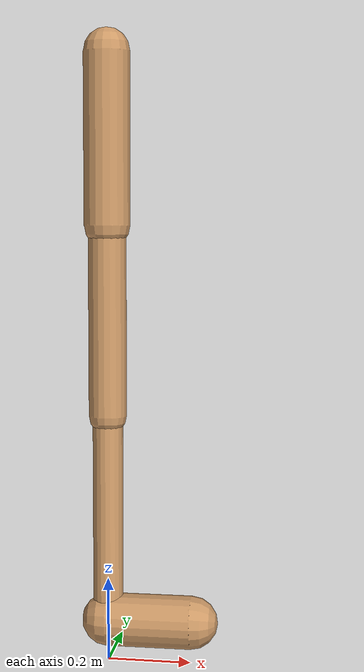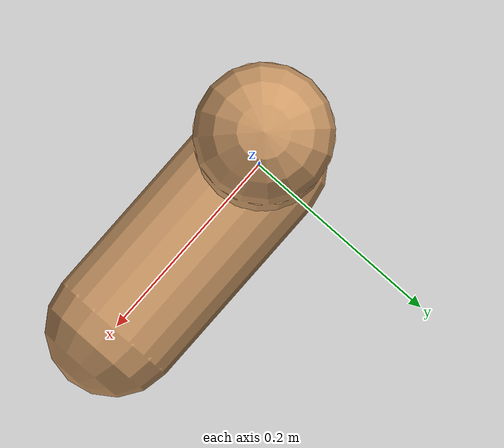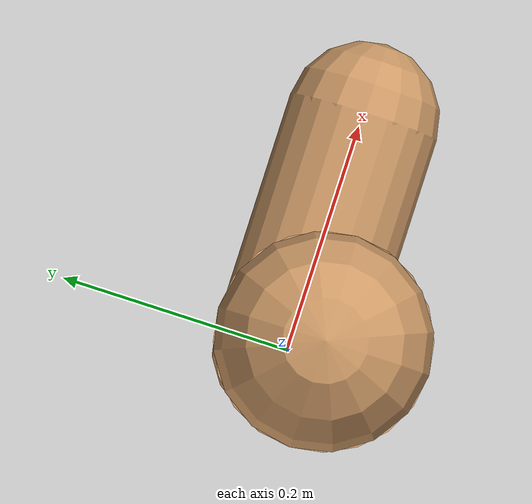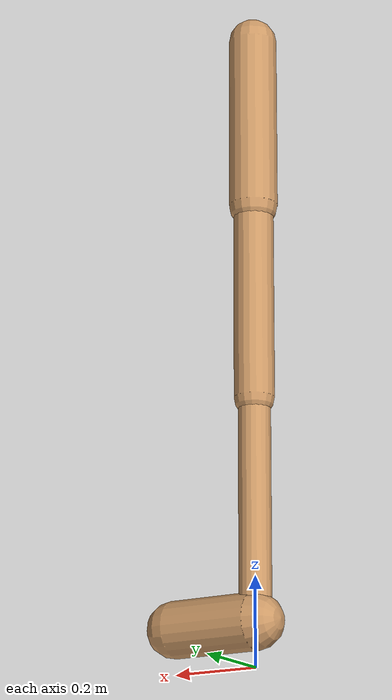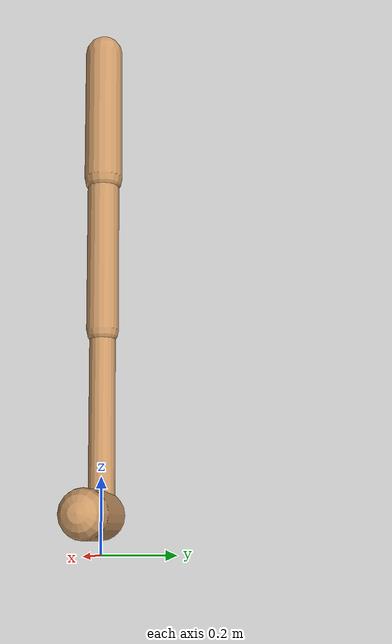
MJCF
<mujoco model="walker2d">
  <compiler angle="degree" coordinate="global" inertiafromgeom="true" />
  <default>
    <joint armature="0.01" damping=".1" limited="true" />
    <geom conaffinity="0" condim="3" contype="1" density="1000" friction="0.8 .1 .1" rgba="0.8 0.6 .4 1" />
  </default>
  <option integrator="RK4" timestep="0.002" />
  <worldbody>

    <body name="torso" pos="0 0 0.0026060160582863923">
      <joint armature="0" axis="1 0 0" damping="0" limited="false" name="ignorex" pos="0 0 0" stiffness="0" type="slide" />
      <joint armature="0" axis="0 0 1" damping="0" limited="false" name="ignorez" pos="0 0 0" ref="1.25" stiffness="0" type="slide" />
      <joint armature="0" axis="0 1 0" damping="0" limited="false" name="ignorey" pos="0 0 0" stiffness="0" type="hinge" />
      <geom fromto="0 0 1.45 0 0 1.05" name="torso_geom" size="0.05481199079702062" type="capsule" />
      <body name="thigh">
        <joint axis="0 -1 0" name="thigh_joint" pos="0 0 1.05" range="-150 0" type="hinge" />
        <geom fromto="0.0 0.0 1.05 0.0 0.0 0.5987655713408117" name="thigh_geom" size="0.04521200850434651" type="capsule" />
        <body name="leg" pos="0.0 0.0 -0.0012344286591883247">
          <joint axis="0 -1 0" name="leg_joint" pos="0 0 0.6" range="-150 0" type="hinge" />
          <geom fromto="0.0 0.0 0.6 0.0 0.0 0.09862841260090191" name="leg_geom" size="0.03616960680347721" type="capsule" />
          <body name="foot" pos="0.0 0.0 -0.0013715873990980954">
            <joint axis="0 -1 0" name="foot_joint" pos="0 0 0.1" range="-45 45" type="hinge" />
            <geom fromto="-0.0 0.0 0.1 0.202017242340091 0.0 0.1" name="foot_geom" size="0.06349067986300327" type="capsule" />
          </body>
        </body>
      </body>

      <body name="thigh_left">
        <joint axis="0 -1 0" name="thigh_left_joint" pos="0 0 1.05" range="-150 0" type="hinge" />
        <geom fromto="0.0 0.0 1.05 0.0 0.0 0.5987655713408117" name="thigh_left_geom" rgba=".7 .3 .6 1" size="0.04521200850434651" type="capsule" />
        <body name="leg_left" pos="0.0 0.0 -0.0012344286591883247">
          <joint axis="0 -1 0" name="leg_left_joint" pos="0 0 0.6" range="-150 0" type="hinge" />
          <geom fromto="0.0 0.0 0.6 0.0 0.0 0.09862841260090191" name="leg_left_geom" rgba=".7 .3 .6 1" size="0.03616960680347721" type="capsule" />
          <body name="foot_left" pos="0.0 0.0 -0.0013715873990980954">
            <joint axis="0 -1 0" name="foot_left_joint" pos="0 0 0.1" range="-45 45" type="hinge" />
            <geom fromto="-0.0 0.0 0.1 0.202017242340091 0.0 0.1" name="foot_left_geom" rgba=".7 .3 .6 1" size="0.06349067986300327" type="capsule" />
          </body>
        </body>
      </body>
    </body>
  </worldbody>
  <actuator>

    <motor ctrllimited="true" ctrlrange="-1.0 1.0" gear="100" joint="thigh_joint" />
    <motor ctrllimited="true" ctrlrange="-1.0 1.0" gear="100" joint="leg_joint" />
    <motor ctrllimited="true" ctrlrange="-1.0 1.0" gear="100" joint="foot_joint" />
    <motor ctrllimited="true" ctrlrange="-1.0 1.0" gear="100" joint="thigh_left_joint" />
    <motor ctrllimited="true" ctrlrange="-1.0 1.0" gear="100" joint="leg_left_joint" />
    <motor ctrllimited="true" ctrlrange="-1.0 1.0" gear="100" joint="foot_left_joint" />

  </actuator>
</mujoco>
